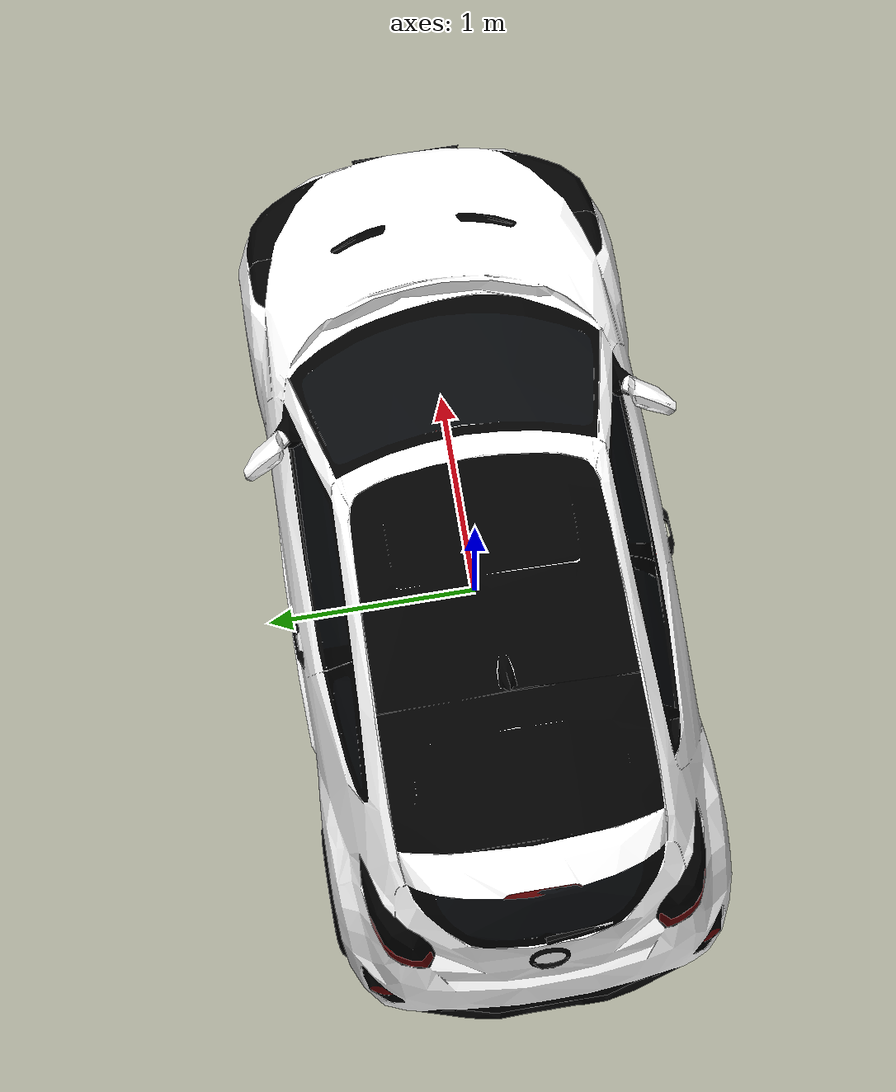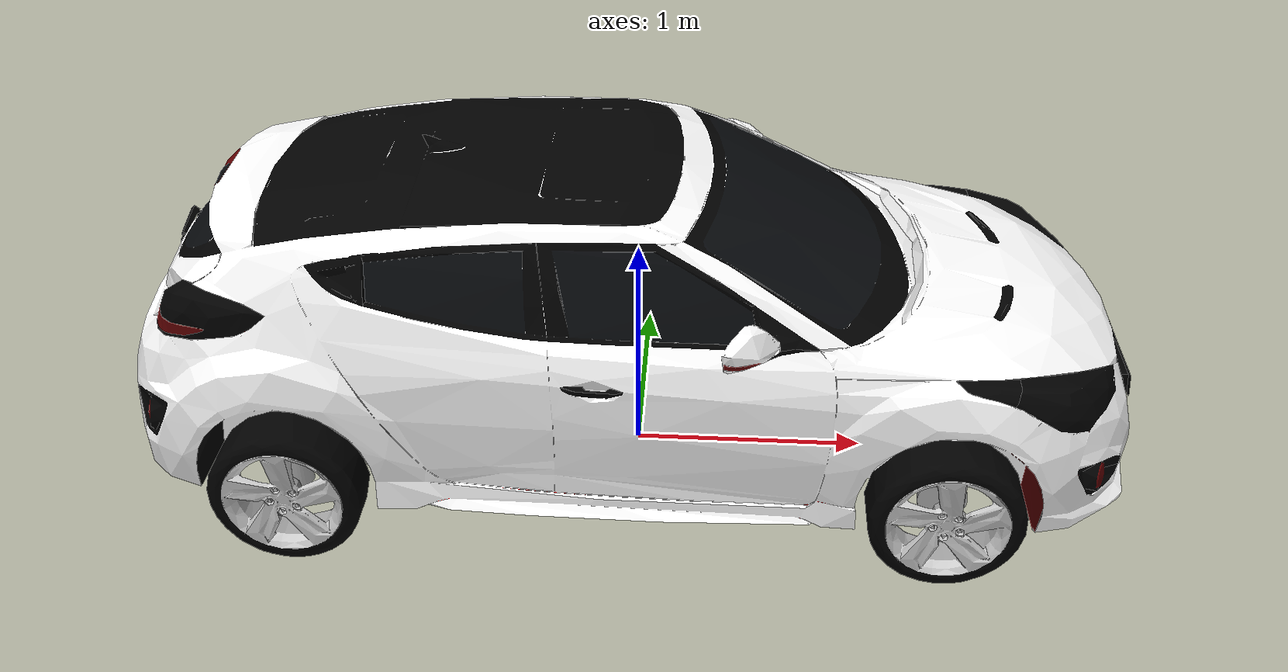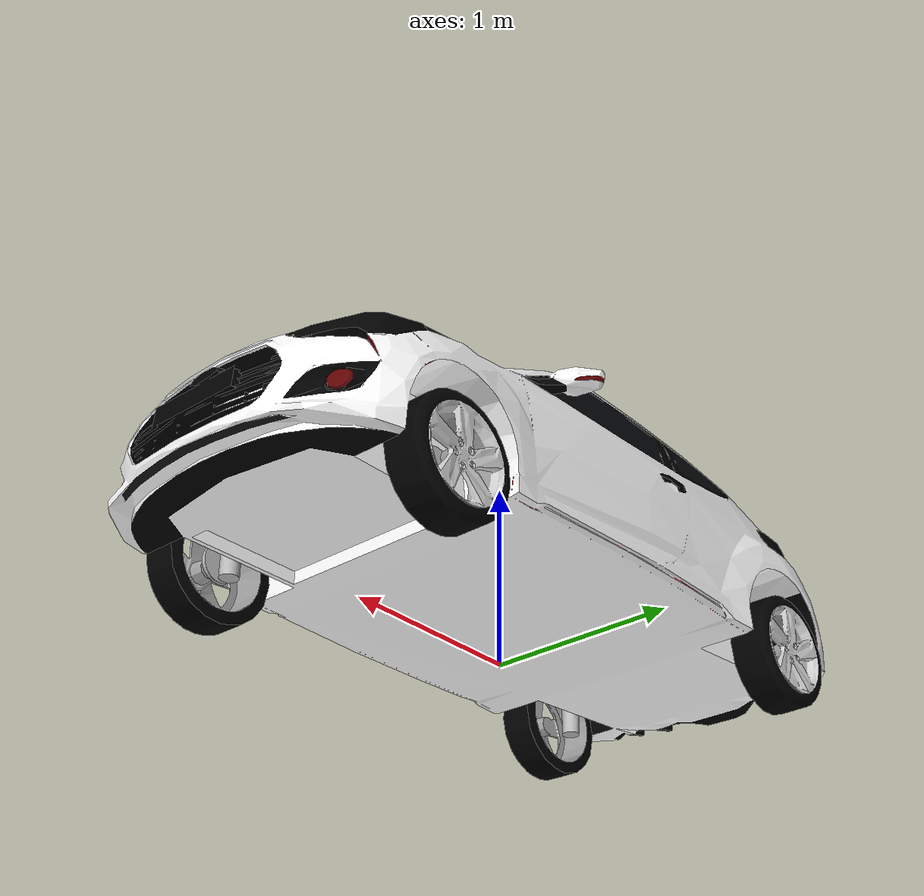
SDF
<?xml version="1.0"?>
<sdf version='1.6'>

<!-- creating car model-->
  <model name='myfirst1'>
    <pose>0 0 0 0 0 0</pose>
    <link name='base_link'>
      <pose frame=''>0 0 0 0 -0 0</pose>
      <inertial>
        <pose frame=''>0 0 0.4 0 -0 0</pose>
        <mass>1225</mass>
        <inertia>
          <ixx>523.5</ixx>
          <ixy>0</ixy>
          <ixz>0</ixz>
          <iyy>2018</iyy>
          <iyz>0</iyz>
          <izz>2141.38</izz>
        </inertia>
      </inertial>
<!-- collision model from blender -->
      <collision name='base_link_collision'>
        <pose frame=''>0 0 0.6 0 -0 0</pose>
	 <geometry>
          <box>
            <size>4.22 1.78 1</size>
          </box>
        </geometry>
      </collision>
<!--visual model from blender -->
      <visual name='base_link_visual'>
        <pose frame=''>0 0 0.1 0 -0 1.5707</pose>
        <geometry>
          <mesh>
            <scale>1 1 1</scale>
            <uri>model://car/meshes/veloster_shell_optimized_0.4.dae</uri>
          </mesh>
        </geometry>
<plugin name ="libinit_visual_parameters" filename = "libinit_visual_parameters.so"/>
      </visual>
      <visual name='brake_light_visual'>
        <pose frame=''>0 0 0.1 0 -0 1.5707</pose>
        <geometry>
          <mesh>
            <scale>1 1 1</scale>
            <uri>model://car/meshes/brake_light_optimized_0.4.dae</uri>
          </mesh>
        </geometry>
<plugin name ="brakelight" filename = "libbrake_light.so"/>
      </visual>
      <visual name='right_indicator_visual'>
        <pose frame=''>0 0 0.1 0 -0 1.5707</pose>
        <geometry>
          <mesh>
            <scale>1 1 1</scale>
            <uri>model://car/meshes/indicator_right.dae</uri>
          </mesh>
        </geometry>
<plugin name ="rightindicatorchange" filename = "librightIndicator_change.so"/>
      </visual>
      <visual name='zleft_indicator_visual'>
        <pose frame=''>0 0 0.1 0 -0 1.5707</pose>
        <geometry>
          <mesh>
            <scale>1 1 1</scale>
            <uri>model://car/meshes/indicator_left.dae</uri>
          </mesh>
        </geometry>
<plugin name ="leftindicatorchange" filename = "libleftIndicator_change.so"/>
      </visual>
    </link>
    <link name='back_left_wheel_susp'>
      <pose frame=''>-1.37 0.62 0.3 0 -0 0</pose>
      <inertial>
        <pose frame=''>0 0 0 0 -0 0</pose>
        <mass>5</mass>
        <inertia>
          <ixx>0.0697</ixx>
          <ixy>0</ixy>
          <ixz>0.0697</ixz>
          <iyy>0.4</iyy>
          <iyz>0</iyz>
          <izz>0.0625</izz>
        </inertia>
      </inertial>
      <collision name='back_left_wheel_susp_collision'>
        <pose frame=''>0 0 0 0 -0 0</pose>
        <geometry>
          <cylinder>
            <length>0.2</length>
            <radius>0.05</radius>
          </cylinder>
        </geometry>
      </collision>
      <visual name='back_left_wheel_susp_visual'>
        <pose frame=''>0 0 0 0 -0 0</pose>
        <geometry>
          <cylinder>
            <length>0.2</length>
            <radius>0.05</radius>
          </cylinder>
        </geometry>
      </visual>
    </link>
    <joint name='back_left_wheel_susp_joint' type='prismatic'>
      <child>back_left_wheel_susp</child>
      <parent>base_link</parent>
      <axis>
        <xyz>0 0 -1</xyz>
        <limit>
          <lower>-0.07</lower>
          <upper>0.07</upper>
          <effort>1000</effort>
          <velocity>0.5</velocity>
        </limit>
        <dynamics>
          <damping>2</damping>
          <friction>0</friction>
          <spring_reference>0</spring_reference>
          <spring_stiffness>0</spring_stiffness>
        </dynamics>
        <use_parent_model_frame>1</use_parent_model_frame>
      </axis>
    </joint>
    <link name='back_left_wheel'>
      <pose frame=''>-1.37 0.79 0.3 0 -0 0</pose>
      <inertial>
        <pose frame=''>0 0 0 0 -0 0</pose>
        <mass>23</mass>
        <inertia>
          <ixx>0.6512</ixx>
          <ixy>0</ixy>
          <ixz>0</ixz>
          <iyy>0.6512</iyy>
          <iyz>0</iyz>
          <izz>1.1252</izz>
        </inertia>
      </inertial>
      <collision name='back_left_wheel_collision'>
        <pose frame=''>0 0 0 1.5707 -0 0</pose>
        <geometry>
          <cylinder>
            <length>0.195</length>
            <radius>0.300</radius>
          </cylinder>
        </geometry>
      </collision>
      <visual name='back_left_wheel_visual'>
        <pose frame=''>0 0 0 1.5707 -0 0</pose>
        <geometry>
          <mesh>
            <scale>0.1 0.1 0.1</scale>
            <uri>model://car/meshes/veloster_wheel_left_optimized_0.4.dae</uri>
          </mesh>
        </geometry>
      </visual>
    </link>
    <joint name='back_left_wheel_joint' type='revolute'>
	<physics>
          <provide_feedback>true</provide_feedback>
        </physics>
      <child>back_left_wheel</child>
      <parent>back_left_wheel_susp</parent>
      <axis>
        <xyz>0 1 0</xyz>
        <limit>
          <lower>-1e+16</lower>
          <upper>1e+16</upper>
        </limit>
        <dynamics>
          <damping>0.1</damping>
          <friction>20</friction>
          <spring_reference>0</spring_reference>
          <spring_stiffness>0</spring_stiffness>
        </dynamics>
        <use_parent_model_frame>1</use_parent_model_frame>
      </axis>
    </joint>

    <link name='back_right_wheel_susp'>
      <pose frame=''>-1.37 -0.62 0.3 0 -0 0</pose>
      <inertial>
        <pose frame=''>0 0 0 0 -0 0</pose>
        <mass>5</mass>
        <inertia>
          <ixx>0.0697</ixx>
          <ixy>0</ixy>
          <ixz>0.0697</ixz>
          <iyy>0.4</iyy>
          <iyz>0</iyz>
          <izz>0.0625</izz>
        </inertia>
      </inertial>
      <collision name='back_right_wheel_susp_collision'>
        <pose frame=''>0 0 0 0 -0 0</pose>
        <geometry>
          <cylinder>
            <length>0.2</length>
            <radius>0.05</radius>
          </cylinder>
        </geometry>
      </collision>
      <visual name='back_right_wheel_susp_visual'>
        <pose frame=''>0 0 0 0 -0 0</pose>
        <geometry>
          <cylinder>
            <length>0.2</length>
            <radius>0.05</radius>
          </cylinder>
        </geometry>
      </visual>
    </link>
    <joint name='back_right_wheel_susp_joint' type='prismatic'>
      <child>back_right_wheel_susp</child>
      <parent>base_link</parent>
      <axis>
        <xyz>0 0 -1</xyz>
        <limit>
          <lower>-0.07</lower>
          <upper>0.07</upper>
          <effort>1000</effort>
          <velocity>0.5</velocity>
        </limit>
        <dynamics>
          <damping>2</damping>
          <friction>0</friction>
          <spring_reference>0</spring_reference>
          <spring_stiffness>0</spring_stiffness>
        </dynamics>
        <use_parent_model_frame>1</use_parent_model_frame>
      </axis>
    </joint>
    <link name='back_right_wheel'>
      <pose frame=''>-1.37 -0.79 0.3 0 -0 0</pose>
      <inertial>
        <pose frame=''>0 0 0 0 -0 0</pose>
        <mass>23</mass>
        <inertia>
          <ixx>0.6512</ixx>
          <ixy>0</ixy>
          <ixz>0</ixz>
          <iyy>0.6512</iyy>
          <iyz>0</iyz>
          <izz>1.1252</izz>
        </inertia>
      </inertial>
      <collision name='back_right_wheel_collision'>
        <pose frame=''>0 0 0 1.5707 -0 0</pose>
        <geometry>
          <cylinder>
            <length>0.195</length>
            <radius>0.300</radius>
          </cylinder>
        </geometry>
      </collision>
      <visual name='back_right_wheel_visual'>
        <pose frame=''>0 0 0 1.5707 -0 0</pose>
        <geometry>
          <mesh>
            <scale>0.1 0.1 0.1</scale>
            <uri>model://car/meshes/veloster_wheel_right_optimized_0.4.dae</uri>
          </mesh>
        </geometry>
      </visual>
    </link>
    <joint name='back_right_wheel_joint' type='revolute'>
	<physics>
          <provide_feedback>true</provide_feedback>
    	</physics>
      <child>back_right_wheel</child>
      <parent>back_right_wheel_susp</parent>
      <axis>
        <xyz>0 1 0</xyz>
        <limit>
          <lower>-1e+16</lower>
          <upper>1e+16</upper>
        </limit>
        <dynamics>
          <damping>0.1</damping>
          <friction>20</friction>
          <spring_reference>0</spring_reference>
          <spring_stiffness>0</spring_stiffness>
        </dynamics>
        <use_parent_model_frame>1</use_parent_model_frame>
      </axis>
    </joint>

    <link name='front_left_wheel_susp'>
      <pose frame=''>1.26 0.62 0.3 0 -0 0</pose>
      <inertial>
        <pose frame=''>0 0 0 0 -0 0</pose>
        <mass>5</mass>
        <inertia>
          <ixx>0.0697</ixx>
          <ixy>0</ixy>
          <ixz>0.0697</ixz>
          <iyy>0.4</iyy>
          <iyz>0</iyz>
          <izz>0.0625</izz>
        </inertia>
      </inertial>
      <collision name='front_left_wheel_susp_collision'>
        <pose frame=''>0 0 0 0 -0 0</pose>
        <geometry>
          <cylinder>
            <length>0.2</length>
            <radius>0.05</radius>
          </cylinder>
        </geometry>
      </collision>
      <visual name='front_left_wheel_susp_visual'>
        <pose frame=''>0 0 0 0 -0 0</pose>
        <geometry>
          <cylinder>
            <length>0.2</length>
            <radius>0.05</radius>
          </cylinder>
        </geometry>
      </visual>
    </link>
    <joint name='front_left_wheel_susp_joint' type='prismatic'>
      <child>front_left_wheel_susp</child>
      <parent>base_link</parent>
      <axis>
        <xyz>0 0 -1</xyz>
        <limit>
          <lower>-0.07</lower>
          <upper>0.07</upper>
          <effort>1000</effort>
          <velocity>0.5</velocity>
        </limit>
        <dynamics>
          <damping>2</damping>
          <friction>0</friction>
          <spring_reference>0</spring_reference>
          <spring_stiffness>0</spring_stiffness>
        </dynamics>
        <use_parent_model_frame>1</use_parent_model_frame>
      </axis>
    </joint>
    <link name='front_left_steering'>
      <pose frame=''>1.26 0.7 0.3 0 -0 0</pose>
      <inertial>
        <pose frame=''>0 0 0 0 -0 0</pose>
        <mass>5</mass>
        <inertia>
          <ixx>0.0501</ixx>
          <ixy>0</ixy>
          <ixz>0</ixz>
          <iyy>0.0501</iyy>
          <iyz>0</iyz>
          <izz>0.1</izz>
        </inertia>
      </inertial>
      <collision name='front_left_steering_collision'>
        <pose frame=''>0 0 0 1.5707 -0 0</pose>
        <geometry>
          <cylinder>
            <length>0.02</length>
            <radius>0.1</radius>
          </cylinder>
        </geometry>
      </collision>
      <visual name='front_left_steering_visual'>
        <pose frame=''>0 0 0 1.5707 -0 0</pose>
        <geometry>
          <cylinder>
            <length>0.02</length>
            <radius>0.1</radius>
          </cylinder>
        </geometry>
      </visual>
    </link>
    <joint name='front_left_steering_joint' type='revolute'>
	<physics>
          <provide_feedback>true</provide_feedback>
    	</physics>
      <child>front_left_steering</child>
      <parent>front_left_wheel_susp</parent>
      <axis>
        <xyz>0 0 1</xyz>
        <limit>
          <lower>-0.6</lower>
          <upper>0.6</upper>
          <effort>1000</effort>
          <velocity>0.5</velocity>
        </limit>
        <dynamics>
          <spring_reference>0</spring_reference>
          <spring_stiffness>0</spring_stiffness>
        </dynamics>
        <use_parent_model_frame>1</use_parent_model_frame>
      </axis>
    </joint>
    <link name='front_left_wheel'>
      <pose frame=''>1.26 0.78 0.3 0 -0 0</pose>
      <inertial>
        <pose frame=''>0 0 0 0 -0 0</pose>
        <mass>23</mass>
        <inertia>
          <ixx>0.6512</ixx>
          <ixy>0</ixy>
          <ixz>0</ixz>
          <iyy>0.6512</iyy>
          <iyz>0</iyz>
          <izz>1.1252</izz>
        </inertia>
      </inertial>
      <collision name='front_left_wheel_collision'>
        <pose frame=''>0 0 0 1.5707 -0 0</pose>
        <geometry>
          <cylinder>
            <length>0.195</length>
            <radius>0.300</radius>
          </cylinder>
        </geometry>
      </collision>
      <visual name='front_left_wheel_visual'>
        <pose frame=''>0 0 0 1.5707 -0 0</pose>
        <geometry>
          <mesh>
            <scale>0.1 0.1 0.1</scale>
            <uri>model://car/meshes/veloster_wheel_left_optimized_0.4.dae</uri>
          </mesh>
        </geometry>
      </visual>
    </link>
    <joint name='front_left_wheel_joint' type='revolute'>
	<physics>
          <provide_feedback>true</provide_feedback>
    	</physics>
      <child>front_left_wheel</child>
      <parent>front_left_steering</parent>
      <axis>
        <xyz>0 1 0</xyz>
        <limit>
          <lower>-1e+16</lower>
          <upper>1e+16</upper>
        </limit>
        <dynamics>
          <damping>0.1</damping>
          <friction>20</friction>
          <spring_reference>0</spring_reference>
          <spring_stiffness>0</spring_stiffness>
        </dynamics>
        <use_parent_model_frame>1</use_parent_model_frame>
      </axis>
    </joint>

    <link name='front_right_wheel_susp'>
      <pose frame=''>1.26 -0.62 0.3 0 -0 0</pose>
      <inertial>
        <pose frame=''>0 0 0 0 -0 0</pose>
        <mass>5</mass>
        <inertia>
          <ixx>0.0697</ixx>
          <ixy>0</ixy>
          <ixz>0.0697</ixz>
          <iyy>0.4</iyy>
          <iyz>0</iyz>
          <izz>0.0625</izz>
        </inertia>
      </inertial>
      <collision name='front_right_wheel_susp_collision'>
        <pose frame=''>0 0 0 0 -0 0</pose>
        <geometry>
          <cylinder>
            <length>0.2</length>
            <radius>0.05</radius>
          </cylinder>
        </geometry>
      </collision>
      <visual name='front_right_wheel_susp_visual'>
        <pose frame=''>0 0 0 0 -0 0</pose>
        <geometry>
          <cylinder>
            <length>0.2</length>
            <radius>0.05</radius>
          </cylinder>
        </geometry>
      </visual>
    </link>
    <joint name='front_right_wheel_susp_joint' type='prismatic'>
      <child>front_right_wheel_susp</child>
      <parent>base_link</parent>
      <axis>
        <xyz>0 0 -1</xyz>
        <limit>
          <lower>-0.07</lower>
          <upper>0.07</upper>
          <effort>1000</effort>
          <velocity>0.5</velocity>
        </limit>
        <dynamics>
          <damping>2</damping>
          <friction>0</friction>
          <spring_reference>0</spring_reference>
          <spring_stiffness>0</spring_stiffness>
        </dynamics>
        <use_parent_model_frame>1</use_parent_model_frame>
      </axis>
    </joint>
    <link name='front_right_steering'>
      <pose frame=''>1.26 -0.7 0.3 0 -0 0</pose>
      <inertial>
        <pose frame=''>0 0 0 0 -0 0</pose>
        <mass>5</mass>
        <inertia>
          <ixx>0.0501</ixx>
          <ixy>0</ixy>
          <ixz>0</ixz>
          <iyy>0.0501</iyy>
          <iyz>0</iyz>
          <izz>0.1</izz>
        </inertia>
      </inertial>
      <collision name='front_right_steering_collision'>
        <pose frame=''>0 0 0 1.5707 -0 0</pose>
        <geometry>
          <cylinder>
            <length>0.02</length>
            <radius>0.1</radius>
          </cylinder>
        </geometry>
      </collision>
      <visual name='front_right_steering_visual'>
        <pose frame=''>0 0 0 1.5707 -0 0</pose>
        <geometry>
          <cylinder>
            <length>0.02</length>
            <radius>0.1</radius>
          </cylinder>
        </geometry>
      </visual>
    </link>
    <joint name='front_right_steering_joint' type='revolute'>
      <child>front_right_steering</child>
      <parent>front_right_wheel_susp</parent>
      <axis>
        <xyz>0 0 1</xyz>
        <limit>
          <lower>-0.6</lower>
          <upper>0.6</upper>
          <effort>1000</effort>
          <velocity>0.5</velocity>
        </limit>
        <dynamics>
          <spring_reference>0</spring_reference>
          <spring_stiffness>0</spring_stiffness>
        </dynamics>
        <use_parent_model_frame>1</use_parent_model_frame>
      </axis>
    </joint>
    <link name='front_right_wheel'>
      <pose frame=''>1.26 -0.78 0.3 0 -0 0</pose>
      <inertial>
        <pose frame=''>0 0 0 0 -0 0</pose>
        <mass>23</mass>
        <inertia>
          <ixx>0.6512</ixx>
          <ixy>0</ixy>
          <ixz>0</ixz>
          <iyy>0.6512</iyy>
          <iyz>0</iyz>
          <izz>1.1252</izz>
        </inertia>
      </inertial>
      <collision name='front_right_wheel_collision'>
        <pose frame=''>0 0 0 1.5707 -0 0</pose>
        <geometry>
          <cylinder>
            <length>0.195</length>
            <radius>0.300</radius>
          </cylinder>
        </geometry>
      </collision>
      <visual name='front_right_wheel_visual'>
        <pose frame=''>0 0 0 1.5707 -0 0</pose>
        <geometry>
          <mesh>
            <scale>0.1 0.1 0.1</scale>
            <uri>model://car/meshes/veloster_wheel_right_optimized_0.4.dae</uri>
          </mesh>
        </geometry>
      </visual>
    </link>
    <joint name='front_right_wheel_joint' type='revolute'>
	<physics>
          <provide_feedback>true</provide_feedback>
        </physics>
      <child>front_right_wheel</child>
      <parent>front_right_steering</parent>
      <axis>
        <xyz>0 1 0</xyz>
        <limit>
          <lower>-1e+16</lower>
          <upper>1e+16</upper>
        </limit>
        <dynamics>
          <damping>0.1</damping>
          <friction>20</friction>
          <spring_reference>0</spring_reference>
          <spring_stiffness>0</spring_stiffness>
        </dynamics>
        <use_parent_model_frame>1</use_parent_model_frame>
      </axis>
    </joint>

<plugin name = "car_controller" filename = "libcar_controller_plugin_key_input.so"/>
<plugin name = "wheel_speed" filename = "libwheel_plugin.so"/>
<!--plugin name = "car_controller" filename = "libcar_controller_plugin_dbw.so"/-->

  </model>
</sdf>
